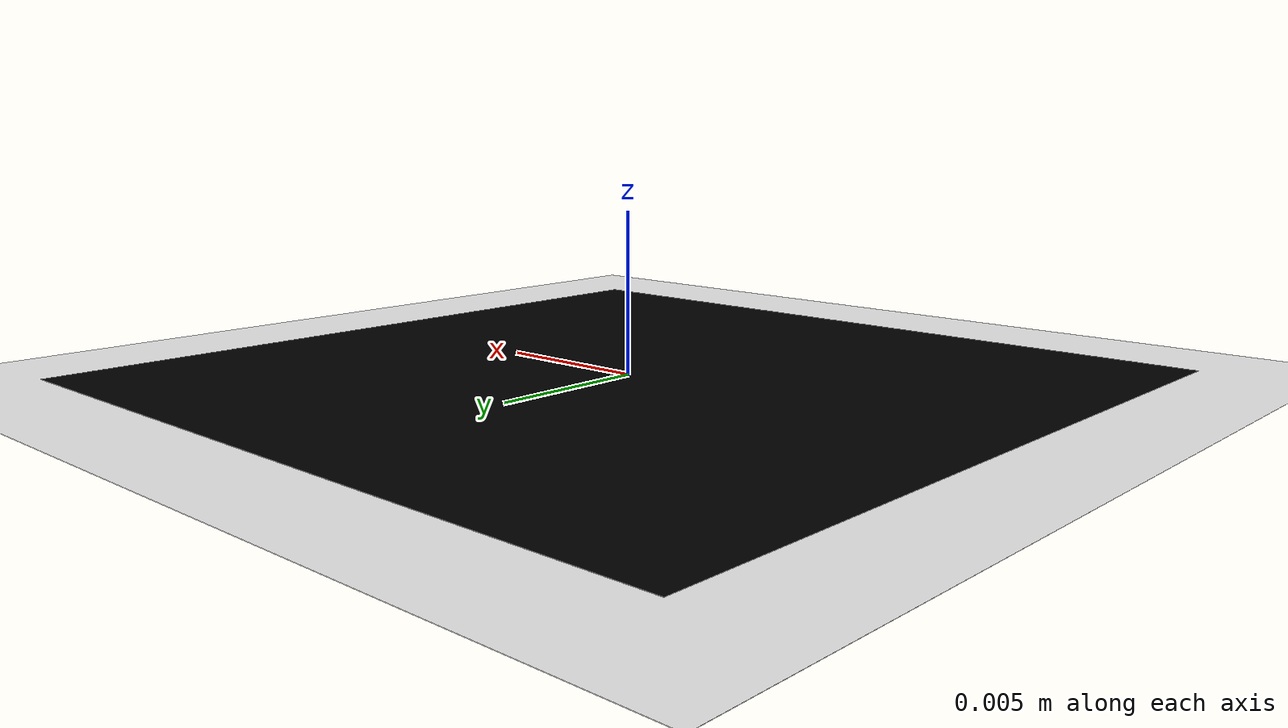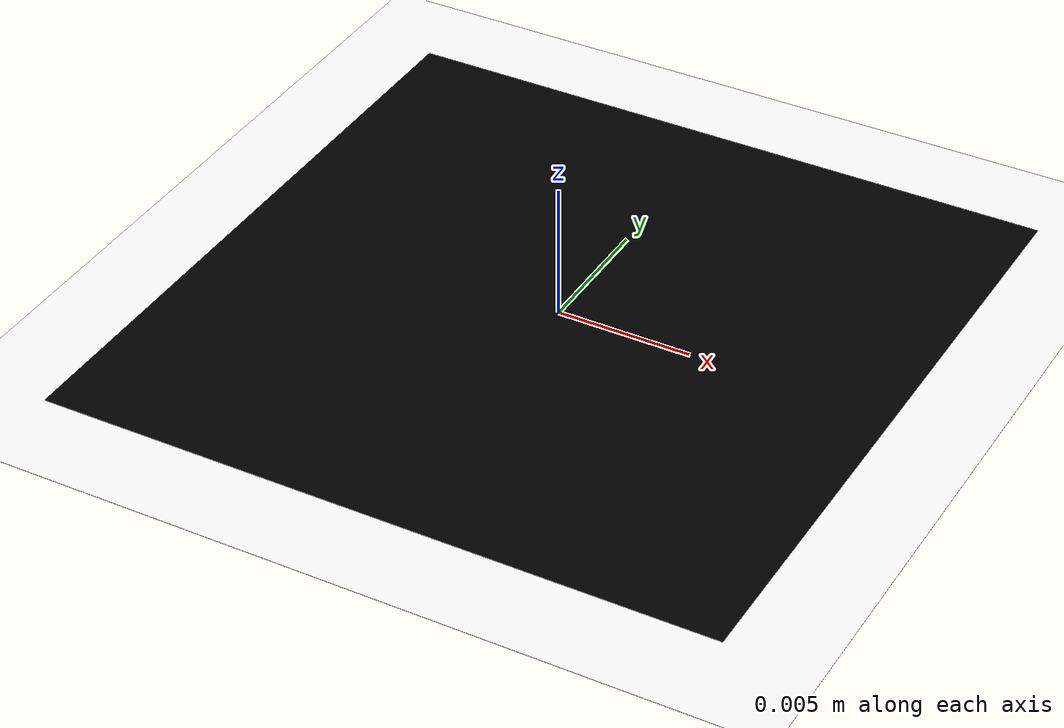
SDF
<?xml version='1.0' encoding='utf-8'?>
<sdf version='1.10'>
<model name='ArUco_marker'>
  <link name='ArUco_link'>
    <enable_wind>false</enable_wind>
    <visual name='ArUco_visual'>
      <geometry><plane>
        <normal>0 0 1</normal>
        <size>0.025 0.025</size>
      </plane></geometry>
      <material>
        <diffuse>0 0 0 1</diffuse>
        <specular>1 1 1 1</specular>
      </material>
    </visual>
    <visual name='ArUco_image'>
      <geometry><plane>
      <normal>0 0 1</normal>
      <size>0.25 0.25 0.01</size>
      </plane></geometry>
        <material>
        <diffuse>1 1 1 1</diffuse>
        <specular>1 1 1 1</specular>
        <pbr>
          <metal>
            <albedo_map>materials/textures/aruco_sample.png</albedo_map>
            <metalness>0</metalness>
            <roughness>1</roughness>
          </metal>
        </pbr>
      </material>
    </visual>
  </link>
  <self_collide>false</self_collide>
  <static>true</static>
</model>
</sdf>
